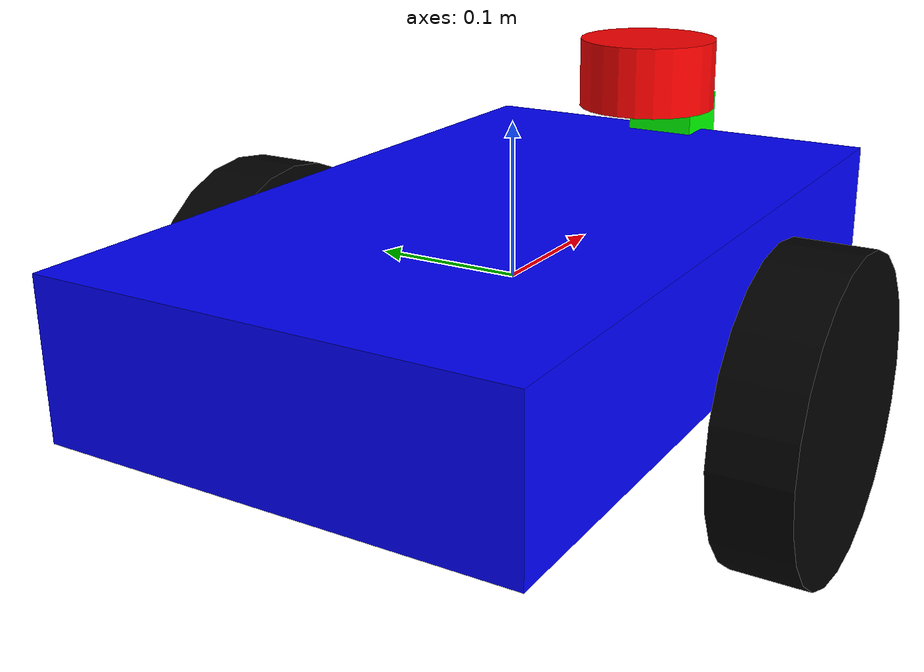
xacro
<?xml version="1.0"?>
<robot name="diffbot" xmlns:xacro="http://ros.org/wiki/xacro">
  <xacro:macro name="inertial" params="mass radius length">
    <inertial>
      <mass value="${mass}"/>
      <inertia ixx="${0.0833333*mass*radius*radius}" ixy="0.0" ixz="0.0"
               iyy="${0.0833333*mass*radius*radius}" iyz="0.0"
               izz="${0.0833333*mass*radius*radius}"/>
    </inertial>
  </xacro:macro>

  <!-- Base Link -->
  <link name="base_link">
    <visual>
      <geometry>
        <box size="0.5 0.3 0.1"/>
      </geometry>
      <material name="blue">
        <color rgba="0 0 1 1"/>
      </material>
    </visual>
    <collision>
      <geometry>
        <box size="0.5 0.3 0.1"/>
      </geometry>
    </collision>
    <xacro:inertial mass="5.0" radius="0.3" length="0.5"/>
  </link>

  <!-- Left Wheel -->
  <link name="left_wheel">
    <visual>
      <geometry>
        <cylinder radius="0.1" length="0.05"/>
      </geometry>
      <material name="black">
        <color rgba="0 0 0 1"/>
      </material>
    </visual>
    <collision>
      <geometry>
        <cylinder radius="0.1" length="0.05"/>
      </geometry>
    </collision>
    <xacro:inertial mass="0.5" radius="0.1" length="0.05"/>
  </link>

  <!-- Right Wheel -->
  <link name="right_wheel">
    <visual>
      <geometry>
        <cylinder radius="0.1" length="0.05"/>
      </geometry>
      <material name="black"/>
    </visual>
    <collision>
      <geometry>
        <cylinder radius="0.1" length="0.05"/>
      </geometry>
    </collision>
    <xacro:inertial mass="0.5" radius="0.1" length="0.05"/>
  </link>

  <!-- Caster Wheel -->
  <link name="caster_wheel">
    <visual>
      <geometry>
        <sphere radius="0.05"/>
      </geometry>
      <material name="silver">
        <color rgba="0.7 0.7 0.7 1"/>
      </material>
    </visual>
    <collision>
      <geometry>
        <sphere radius="0.05"/>
      </geometry>
    </collision>
    <xacro:inertial mass="0.1" radius="0.05" length="0.05"/>
  </link>

  <!-- LIDAR -->
  <link name="lidar_link">
    <visual>
      <geometry>
        <cylinder radius="0.05" length="0.05"/>
      </geometry>
      <material name="red">
        <color rgba="1 0 0 1"/>
      </material>
    </visual>
    <collision>
      <geometry>
        <cylinder radius="0.05" length="0.05"/>
      </geometry>
    </collision>
    <xacro:inertial mass="0.2" radius="0.05" length="0.05"/>
  </link>

  <!-- Camera -->
  <link name="camera_link">
    <visual>
      <geometry>
        <box size="0.05 0.05 0.05"/>
      </geometry>
      <material name="green">
        <color rgba="0 1 0 1"/>
      </material>
    </visual>
    <collision>
      <geometry>
        <box size="0.05 0.05 0.05"/>
      </geometry>
    </collision>
    <xacro:inertial mass="0.1" radius="0.05" length="0.05"/>
  </link>

  <!-- Joints -->
  <joint name="base_to_left_wheel" type="continuous">
    <parent link="base_link"/>
    <child link="left_wheel"/>
    <origin xyz="0 0.2 -0.05" rpy="1.5708 0 0"/>
    <axis xyz="0 0 1"/>
  </joint>
  <joint name="base_to_right_wheel" type="continuous">
    <parent link="base_link"/>
    <child link="right_wheel"/>
    <origin xyz="0 -0.2 -0.05" rpy="1.5708 0 0"/>
    <axis xyz="0 0 1"/>
  </joint>
  <joint name="base_to_caster" type="fixed">
    <parent link="base_link"/>
    <child link="caster_wheel"/>
    <origin xyz="0.2 0 -0.1"/>
  </joint>
  <joint name="base_to_lidar" type="fixed">
    <parent link="base_link"/>
    <child link="lidar_link"/>
    <origin xyz="0.2 0 0.1"/>
  </joint>
  <joint name="base_to_camera" type="fixed">
    <parent link="base_link"/>
    <child link="camera_link"/>
    <origin xyz="0.25 0 0.05"/>
  </joint>

  <!-- Gazebo Plugins -->
  <gazebo reference="lidar_link">
    <sensor type="ray" name="lidar">
      <pose>0 0 0 0 0 0</pose>
      <ray>
        <scan>
          <horizontal>
            <samples>360</samples>
            <resolution>1</resolution>
            <min_angle>-3.14159</min_angle>
            <max_angle>3.14159</max_angle>
          </horizontal>
        </scan>
        <range>
          <min>0.1</min>
          <max>12.0</max>
          <resolution>0.01</resolution>
        </range>
      </ray>
      <plugin name="lidar_plugin" filename="libgazebo_ros_laser.so">
        <topicName>/scan</topicName>
        <frameName>lidar_link</frameName>
      </plugin>
    </sensor>
  </gazebo>
  <gazebo reference="camera_link">
    <sensor type="camera" name="camera">
      <pose>0 0 0 0 0 0</pose>
      <camera>
        <horizontal_fov>1.047</horizontal_fov>
        <image>
          <width>640</width>
          <height>480</height>
        </image>
        <clip>
          <near>0.1</near>
          <far>100</far>
        </clip>
      </camera>
      <plugin name="camera_plugin" filename="libgazebo_ros_camera.so">
        <topicName>/camera/image_raw</topicName>
        <frameName>camera_link</frameName>
      </plugin>
    </sensor>
  </gazebo>
  <gazebo>
    <plugin name="diff_drive" filename="libgazebo_ros_diff_drive.so">
      <ros>
        <namespace>/diffbot</namespace>
      </ros>
      <left_joint>base_to_left_wheel</left_joint>
      <right_joint>base_to_right_wheel</right_joint>
      <wheel_separation>0.4</wheel_separation>
      <wheel_diameter>0.2</wheel_diameter>
      <max_wheel_torque>10.0</max_wheel_torque>
      <max_wheel_acceleration>5.0</max_wheel_acceleration>
      <odometry_frame>odom</odometry_frame>
      <robot_base_frame>base_link</robot_base_frame>
      <publish_odom>true</publish_odom>
      <publish_odom_tf>true</publish_odom_tf>
      <topicName>cmd_vel</topicName>
    </plugin>
  </gazebo>
</robot>
